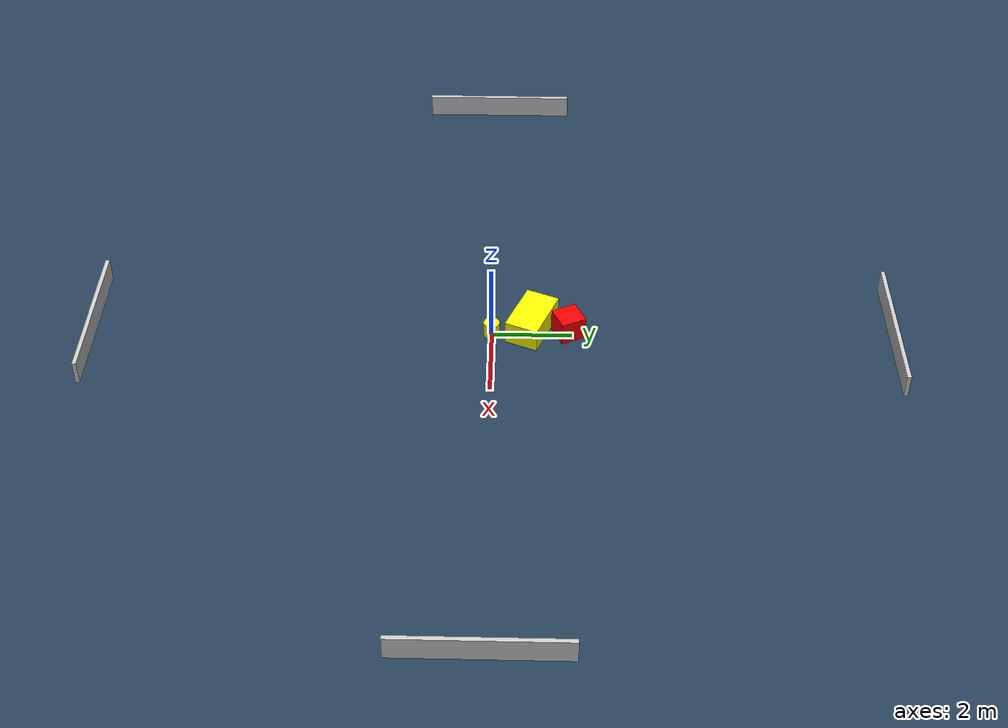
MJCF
<?xml version="1.0" ?>
<mujoco model="generated_environment">
  <option timestep="0.01" integrator="RK4" cone="elliptic"/>
  <default>
    <geom density="1"/>
  </default>
  <asset>
    <texture builtin="gradient" height="3072" name="skybox" rgb1="0.3 0.5 0.7" rgb2="0 0 0" type="skybox" width="512"/>
    <texture builtin="checker" height="300" name="groundplane" rgb1="0.2 0.3 0.4" rgb2="0.1 0.2 0.3" type="2d" width="300"/>
    <material name="groundplane" reflectance="0.2" texrepeat="5 5" texture="groundplane"/>
  </asset>
  <worldbody>
    <light dir="0 0 -1" directional="true" pos="0 0 1.5"/>
    <geom condim="3" friction="0.5 0.005 0.001" material="groundplane" name="floor" pos="0 0 0" size="0 0 0.05" type="plane"/>
    <body name="walls">
      <geom name="wall_1" condim="4" pos="-10.0 0.0 0.3" rgba="0.800000011920929 0.800000011920929 0.800000011920929 1.0" size="0.05 2.0 0.3" type="box"/>
      <geom name="wall_2" condim="4" pos="10.0 0.0 0.3" rgba="0.800000011920929 0.800000011920929 0.800000011920929 1.0" size="0.05 2.0 0.3" type="box"/>
      <geom name="wall_3" condim="4" pos="0.0 -10.0 0.3" rgba="0.800000011920929 0.800000011920929 0.800000011920929 1.0" size="2.0 0.05 0.3" type="box"/>
      <geom name="wall_4" condim="4" pos="0.0 10.0 0.3" rgba="0.800000011920929 0.800000011920929 0.800000011920929 1.0" size="2.0 0.05 0.3" type="box"/>
    </body>
    <body name="robot">
      <joint name="joint_x" type="slide" pos="0 0 0" axis="1 0 0"/>
      <joint name="joint_y" type="slide" pos="0 0 0" axis="0 1 0"/>
      <geom name="robot" type="cylinder" pos="0.0 0.0 0.2" size="0.2 0.2 0.0" mass="5.0" friction="1.0 0.005 0.0001" condim="4" rgba="1.0 1.0 0.0 1.0"/>
    </body>
    <body name="obstacle_1_movable">
      <geom name="obstacle_1_movable" condim="4" pos="-0.2356315318631068 1.0056951213915473 0.3" euler="0 0 337.1679440542614" friction="0.0 0.005 0.001" rgba="1.0 1.0 0.0 1.0" size="0.713047414678635 0.42667379794889676 0.3" type="box" mass="0.1"/>
      <joint type="free"/>
    </body>
    <body name="obstacle_2_static">
      <geom name="obstacle_2_static" condim="4" pos="-0.09513582158373482 1.921414779136157 0.3" euler="0 0 205.22832348236494" friction="0.0 0.005 0.001" rgba="1.0 0.0 0.0 1.0" size="0.3198284814066092 0.32034670901613516 0.3" type="box"/>
    </body>
  </worldbody>
  <actuator>
    <motor name="actuator_x" joint="joint_x" gear="1" ctrlrange="-1 1"/>
    <motor name="actuator_y" joint="joint_y" gear="1" ctrlrange="-1 1"/>
  </actuator>
</mujoco>
